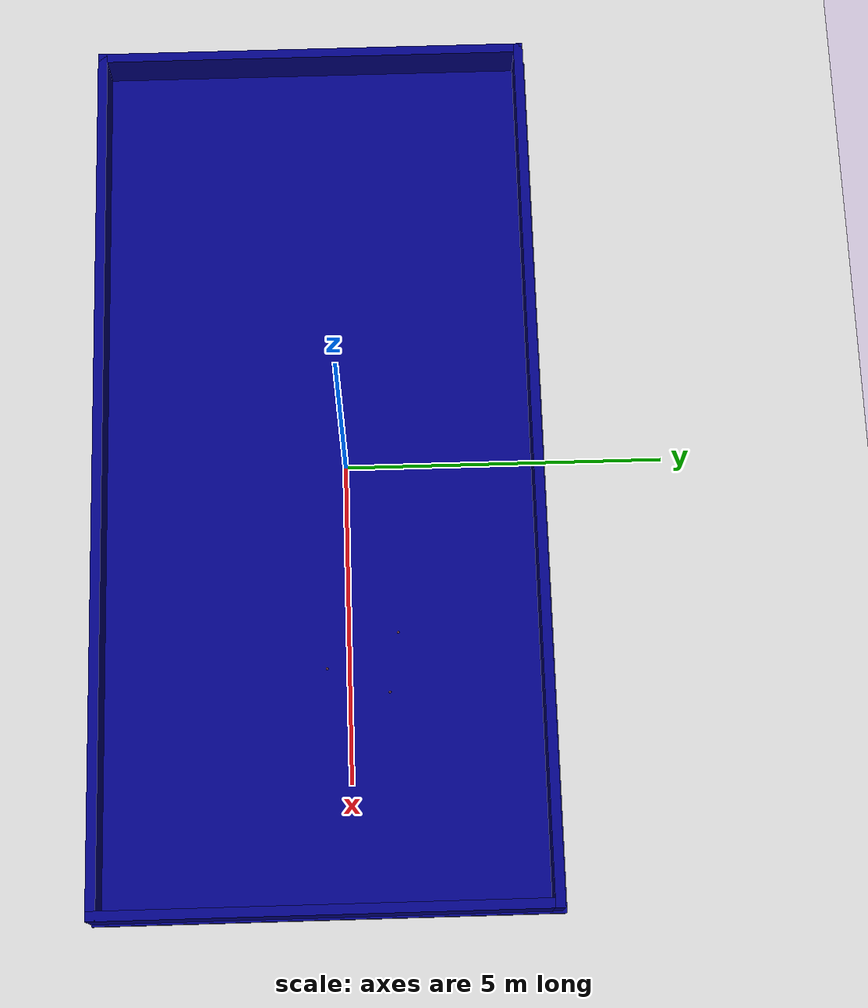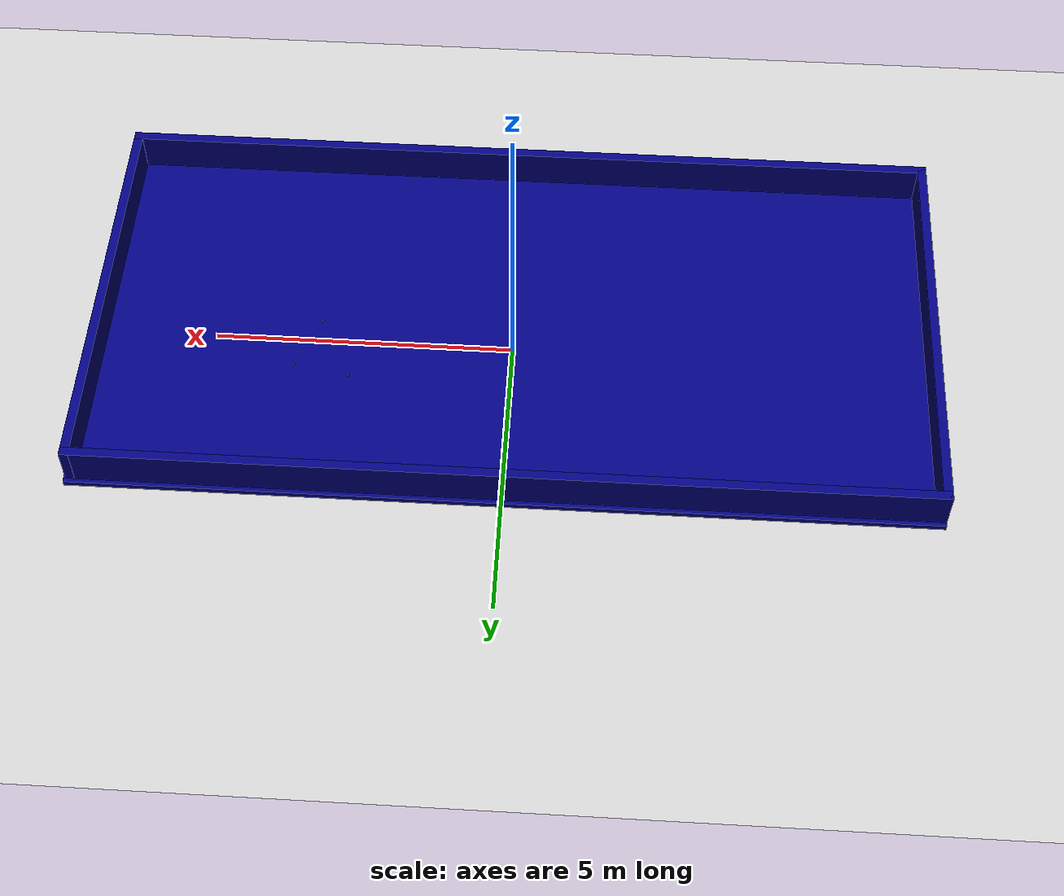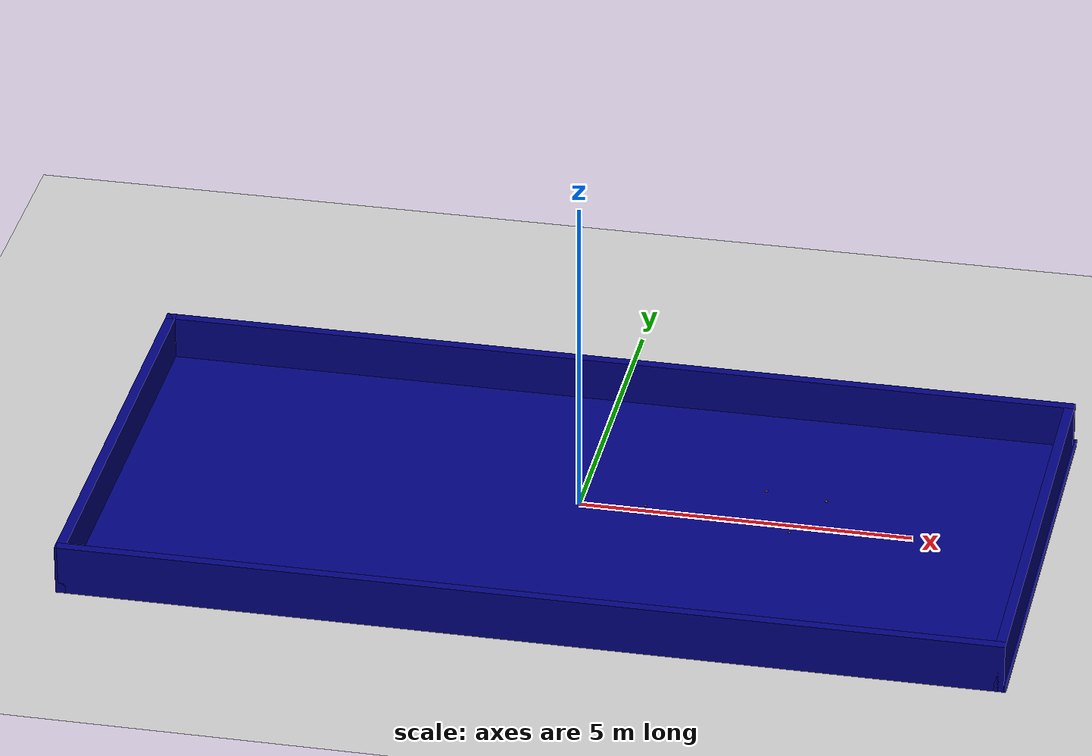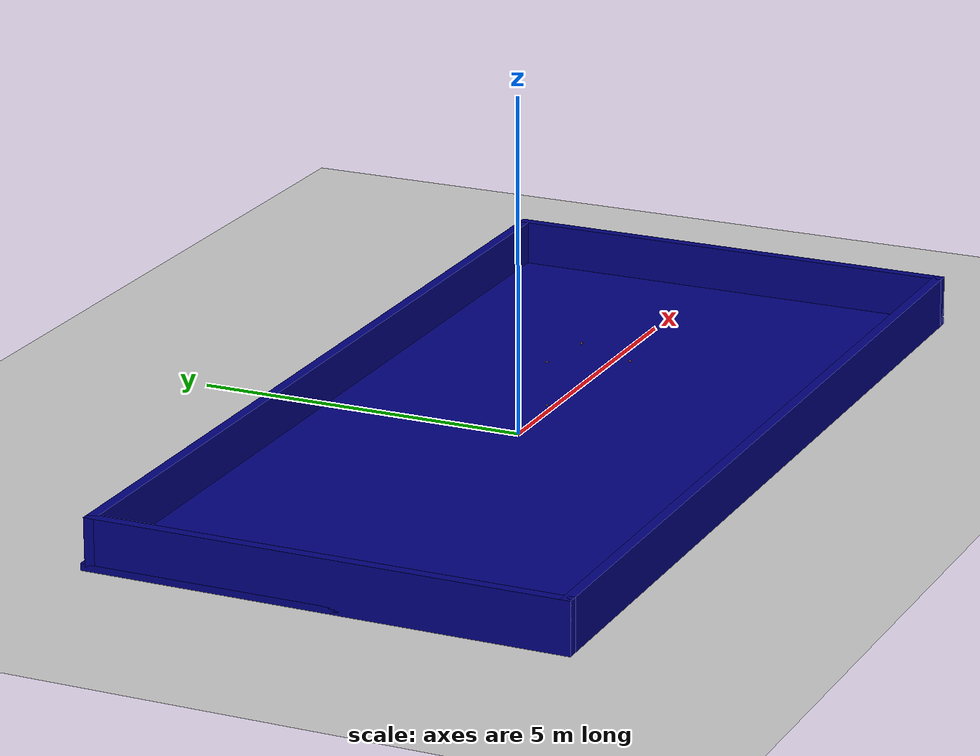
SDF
<sdf version="1.6">
 <world name="default">
  <model name="ground_plane">
   <static>1</static>
   <link name="link">
    <collision name="collision">
     <geometry><plane><normal>0 0 1</normal><size>100 100</size></plane></geometry>
     <surface><friction><ode><mu>100</mu><mu2>50</mu2></ode></friction></surface>
    </collision>
    <visual name="visual">
     <cast_shadows>0</cast_shadows>
     <geometry><plane><normal>0 0 1</normal><size>100 100</size></plane></geometry>
     <material>
      <script><uri>file://media/materials/scripts/gazebo.material</uri><name>Gazebo/Grey</name></script>
     </material>
    </visual>
   </link>
  </model>
  <gravity>0 0 -9.8</gravity>
  <magnetic_field>6e-06 2.3e-05 -4.2e-05</magnetic_field>
  <atmosphere type="adiabatic"/>
  <physics name="default_physics" default="0" type="ode">
   <max_step_size>0.001</max_step_size>
   <real_time_factor>1</real_time_factor>
   <real_time_update_rate>1000</real_time_update_rate>
  </physics>
  <scene><ambient>0.4 0.4 0.4 1</ambient><background>0.7 0.7 0.7 1</background><shadows>1</shadows></scene>
  <spherical_coordinates>
   <surface_model>EARTH_WGS84</surface_model>
   <latitude_deg>0</latitude_deg>
   <longitude_deg>0</longitude_deg>
   <elevation>0</elevation>
   <heading_deg>0</heading_deg>
  </spherical_coordinates>
  <model name="table_tennis_room_1_0">
   <pose>-0.009598 -0.383752 0 0 -0 0</pose>
   <link name="Floor_0">
    <collision name="Floor_0_Collision">
     <geometry><box><size>14.032 7.06688 0.1</size></box></geometry>
     <pose>0 0 0.05 0 -0 0</pose>
    </collision>
    <visual name="Floor_0_Visual">
     <pose>0 0 0.05 0 -0 0</pose>
     <geometry><box><size>14.032 7.06688 0.1</size></box></geometry>
     <material>
      <script><uri>file://media/materials/scripts/gazebo.material</uri><name>Gazebo/Grey</name></script>
      <ambient>0 0 0.498039 1</ambient>
     </material>
    </visual>
    <pose>0 0 0.001 0 -0 0</pose>
   </link>
   <link name="Wall_0">
    <collision name="Wall_0_Collision">
     <geometry><box><size>14 7 0.001</size></box></geometry>
     <pose>0 0 0.0005 0 -0 0</pose>
    </collision>
    <visual name="Wall_0_Visual">
     <pose>0 0 0.0005 0 -0 0</pose>
     <geometry><box><size>14 7 0.001</size></box></geometry>
     <material>
      <script><uri>file://media/materials/scripts/gazebo.material</uri><name>Gazebo/Grey</name></script>
      <ambient>0 0 0.498039 1</ambient>
     </material>
    </visual>
    <pose>0.016 0.0335 0 0 -0 0</pose>
   </link>
   <link name="Wall_2">
    <collision name="Wall_2_Collision">
     <geometry><box><size>14 7 0.001</size></box></geometry>
     <pose>0 0 0.0005 0 -0 0</pose>
    </collision>
    <visual name="Wall_2_Visual">
     <pose>0 0 0.0005 0 -0 0</pose>
     <geometry><box><size>14 7 0.001</size></box></geometry>
     <material>
      <script><uri>file://media/materials/scripts/gazebo.material</uri><name>Gazebo/Grey</name></script>
      <ambient>0 0 0.498039 1</ambient>
     </material>
    </visual>
    <pose>0.016 0.0335 0.001 0 -0 0</pose>
   </link>
   <link name="Wall_5">
    <collision name="Wall_5_Collision">
     <geometry><box><size>14 0.15 0.76</size></box></geometry>
     <pose>0 0 0.38 0 -0 0</pose>
    </collision>
    <visual name="Wall_5_Visual">
     <pose>0 0 0.38 0 -0 0</pose>
     <geometry><box><size>14 0.15 0.76</size></box></geometry>
     <material>
      <script><uri>file://media/materials/scripts/gazebo.material</uri><name>Gazebo/Grey</name></script>
      <ambient>0 0 0.498039 1</ambient>
     </material>
    </visual>
    <pose>-0.016 -3.4585 0.001 0 -0 0</pose>
   </link>
   <link name="Wall_6">
    <collision name="Wall_6_Collision">
     <geometry><box><size>7 0.15 0.76</size></box></geometry>
     <pose>0 0 0.38 0 -0 0</pose>
    </collision>
    <visual name="Wall_6_Visual">
     <pose>0 0 0.38 0 -0 0</pose>
     <geometry><box><size>7 0.15 0.76</size></box></geometry>
     <material>
      <script><uri>file://media/materials/scripts/gazebo.material</uri><name>Gazebo/Grey</name></script>
      <ambient>0 0 0.498039 1</ambient>
     </material>
    </visual>
    <pose>6.909 -0.0335 0.001 0 -0 1.5708</pose>
   </link>
   <link name="Wall_7">
    <collision name="Wall_7_Collision">
     <geometry><box><size>14 0.15 0.76</size></box></geometry>
     <pose>0 0 0.38 0 -0 0</pose>
    </collision>
    <visual name="Wall_7_Visual">
     <pose>0 0 0.38 0 -0 0</pose>
     <geometry><box><size>14 0.15 0.76</size></box></geometry>
     <material>
      <script><uri>file://media/materials/scripts/gazebo.material</uri><name>Gazebo/Grey</name></script>
      <ambient>0 0 0.498039 1</ambient>
     </material>
    </visual>
    <pose>-0.016 3.3915 0.001 0 -0 3.14159</pose>
   </link>
   <link name="Wall_8">
    <collision name="Wall_8_Collision">
     <geometry><box><size>7 0.15 0.76</size></box></geometry>
     <pose>0 0 0.38 0 -0 0</pose>
    </collision>
    <visual name="Wall_8_Visual">
     <pose>0 0 0.38 0 -0 0</pose>
     <geometry><box><size>7 0.15 0.76</size></box></geometry>
     <material>
      <script><uri>file://media/materials/scripts/gazebo.material</uri><name>Gazebo/Grey</name></script>
      <ambient>0 0 0.498039 1</ambient>
     </material>
    </visual>
    <pose>-6.941 -0.0335 0.001 0 0 -1.5708</pose>
   </link>
   <static>1</static>
  </model>
  <light name="user_directional_light_0" type="directional">
   <pose>2.97564 -0.451319 1 0 -0 0</pose>
   <diffuse>0.5 0.5 0.5 1</diffuse>
   <specular>0.1 0.1 0.1 1</specular>
   <direction>0.1 0.1 -0.9</direction>
   <attenuation>
    <range>20</range>
    <constant>0.5</constant>
    <linear>0.01</linear>
    <quadratic>0.001</quadratic>
   </attenuation>
  </light>
  <light name="user_directional_light_1" type="directional">
   <pose>-4.19013 -0.412666 1 0 -0 0</pose>
   <diffuse>0.5 0.5 0.5 1</diffuse>
   <specular>0.1 0.1 0.1 1</specular>
   <direction>0.1 0.1 -0.9</direction>
   <attenuation>
    <range>20</range>
    <constant>0.5</constant>
    <linear>0.01</linear>
    <quadratic>0.001</quadratic>
   </attenuation>
  </light>
  <model name="table_tennis_1_0">
   <link name="link">
    <inertial>
     <mass>0.0027</mass>
     <inertia><ixx>0.1</ixx><ixy>0</ixy><ixz>0</ixz><iyy>0.1</iyy><iyz>0</iyz><izz>0.1</izz></inertia>
    </inertial>
    <visual name="visual">
     <geometry><sphere><radius>0.02</radius></sphere></geometry>
     <material>
      <script>
       <name>Gazebo/OrangeTransparent</name>
       <uri>file://media/materials/scripts/gazebo.material</uri>
      </script>
      <ambient>1 0.44 0 1</ambient>
      <diffuse>1 0.44 0 1</diffuse>
      <specular>0 0 0 1</specular>
      <emissive>0 0 0 1</emissive>
      <shader type="vertex"><normal_map>__default__</normal_map></shader>
     </material>
     <transparency>0.22</transparency>
    </visual>
    <collision name="collision">
     <geometry><sphere><radius>0.02</radius></sphere></geometry>
     <surface>
      <friction>
       <ode><mu>1</mu><mu2>1</mu2><fdir1>0 0 0</fdir1><slip1>0</slip1><slip2>0</slip2></ode>
       <torsional>
        <coefficient>1</coefficient>
        <patch_radius>0</patch_radius>
        <surface_radius>0</surface_radius>
        <use_patch_radius>1</use_patch_radius>
        <ode><slip>0</slip></ode>
       </torsional>
      </friction>
      <bounce><restitution_coefficient>0</restitution_coefficient><threshold>1e+06</threshold></bounce>
      <contact>
       <collide_without_contact>0</collide_without_contact>
       <collide_without_contact_bitmask>1</collide_without_contact_bitmask>
       <collide_bitmask>1</collide_bitmask>
       <ode>
        <soft_cfm>0</soft_cfm>
        <soft_erp>0.2</soft_erp>
        <kp>1e+13</kp>
        <kd>1</kd>
        <max_vel>0.01</max_vel>
        <min_depth>0</min_depth>
       </ode>
       <bullet>
        <split_impulse>1</split_impulse>
        <split_impulse_penetration_threshold>-0.01</split_impulse_penetration_threshold>
        <soft_cfm>0</soft_cfm>
        <soft_erp>0.2</soft_erp>
        <kp>1e+13</kp>
        <kd>1</kd>
       </bullet>
      </contact>
     </surface>
    </collision>
   </link>
   <static>0</static>
   <pose>0 0 0.121 0 -0 0</pose>
  </model>
  <model name="table_tennis_1_3">
   <link name="link">
    <inertial>
     <mass>0.0027</mass>
     <inertia><ixx>0.1</ixx><ixy>0</ixy><ixz>0</ixz><iyy>0.1</iyy><iyz>0</iyz><izz>0.1</izz></inertia>
    </inertial>
    <visual name="visual">
     <geometry><sphere><radius>0.02</radius></sphere></geometry>
     <material>
      <script>
       <name>Gazebo/OrangeTransparent</name>
       <uri>file://media/materials/scripts/gazebo.material</uri>
      </script>
      <ambient>1 0.44 0 1</ambient>
      <diffuse>1 0.44 0 1</diffuse>
      <specular>0 0 0 1</specular>
      <emissive>0 0 0 1</emissive>
      <shader type="vertex"><normal_map>__default__</normal_map></shader>
     </material>
     <transparency>0.22</transparency>
    </visual>
    <collision name="collision">
     <geometry><sphere><radius>0.02</radius></sphere></geometry>
     <surface>
      <friction>
       <ode><mu>1</mu><mu2>1</mu2><fdir1>0 0 0</fdir1><slip1>0</slip1><slip2>0</slip2></ode>
       <torsional>
        <coefficient>1</coefficient>
        <patch_radius>0</patch_radius>
        <surface_radius>0</surface_radius>
        <use_patch_radius>1</use_patch_radius>
        <ode><slip>0</slip></ode>
       </torsional>
      </friction>
      <bounce><restitution_coefficient>0</restitution_coefficient><threshold>1e+06</threshold></bounce>
      <contact>
       <collide_without_contact>0</collide_without_contact>
       <collide_without_contact_bitmask>1</collide_without_contact_bitmask>
       <collide_bitmask>1</collide_bitmask>
       <ode>
        <soft_cfm>0</soft_cfm>
        <soft_erp>0.2</soft_erp>
        <kp>1e+13</kp>
        <kd>1</kd>
        <max_vel>0.01</max_vel>
        <min_depth>0</min_depth>
       </ode>
       <bullet>
        <split_impulse>1</split_impulse>
        <split_impulse_penetration_threshold>-0.01</split_impulse_penetration_threshold>
        <soft_cfm>0</soft_cfm>
        <soft_erp>0.2</soft_erp>
        <kp>1e+13</kp>
        <kd>1</kd>
       </bullet>
      </contact>
     </surface>
    </collision>
   </link>
   <static>0</static>
   <pose>1 0 0.1 0 -0 0</pose>
  </model>
  <model name="table_tennis_1">
   <link name="link">
    <inertial>
     <mass>0.0027</mass>
     <inertia><ixx>0.1</ixx><ixy>0</ixy><ixz>0</ixz><iyy>0.1</iyy><iyz>0</iyz><izz>0.1</izz></inertia>
    </inertial>
    <visual name="visual">
     <geometry><sphere><radius>0.02</radius></sphere></geometry>
     <material>
      <script>
       <name>Gazebo/OrangeTransparent</name>
       <uri>file://media/materials/scripts/gazebo.material</uri>
      </script>
      <ambient>1 0.44 0 1</ambient>
      <diffuse>1 0.44 0 1</diffuse>
      <specular>0 0 0 1</specular>
      <emissive>0 0 0 1</emissive>
      <shader type="vertex"><normal_map>__default__</normal_map></shader>
     </material>
     <transparency>0.22</transparency>
    </visual>
    <collision name="collision">
     <geometry><sphere><radius>0.02</radius></sphere></geometry>
     <surface>
      <friction>
       <ode><mu>1</mu><mu2>1</mu2><fdir1>0 0 0</fdir1><slip1>0</slip1><slip2>0</slip2></ode>
       <torsional>
        <coefficient>1</coefficient>
        <patch_radius>0</patch_radius>
        <surface_radius>0</surface_radius>
        <use_patch_radius>1</use_patch_radius>
        <ode><slip>0</slip></ode>
       </torsional>
      </friction>
      <bounce><restitution_coefficient>0</restitution_coefficient><threshold>1e+06</threshold></bounce>
      <contact>
       <collide_without_contact>0</collide_without_contact>
       <collide_without_contact_bitmask>1</collide_without_contact_bitmask>
       <collide_bitmask>1</collide_bitmask>
       <ode>
        <soft_cfm>0</soft_cfm>
        <soft_erp>0.2</soft_erp>
        <kp>1e+13</kp>
        <kd>1</kd>
        <max_vel>0.01</max_vel>
        <min_depth>0</min_depth>
       </ode>
       <bullet>
        <split_impulse>1</split_impulse>
        <split_impulse_penetration_threshold>-0.01</split_impulse_penetration_threshold>
        <soft_cfm>0</soft_cfm>
        <soft_erp>0.2</soft_erp>
        <kp>1e+13</kp>
        <kd>1</kd>
       </bullet>
      </contact>
     </surface>
    </collision>
   </link>
   <static>0</static>
   <pose>3.62177 0.608005 0.121 0 -0 0</pose>
  </model>
  <model name="table_tennis_1_1">
   <link name="link">
    <inertial>
     <mass>0.0027</mass>
     <inertia><ixx>0.1</ixx><ixy>0</ixy><ixz>0</ixz><iyy>0.1</iyy><iyz>0</iyz><izz>0.1</izz></inertia>
    </inertial>
    <visual name="visual">
     <geometry><sphere><radius>0.02</radius></sphere></geometry>
     <material>
      <script>
       <name>Gazebo/OrangeTransparent</name>
       <uri>file://media/materials/scripts/gazebo.material</uri>
      </script>
      <ambient>1 0.44 0 1</ambient>
      <diffuse>1 0.44 0 1</diffuse>
      <specular>0 0 0 1</specular>
      <emissive>0 0 0 1</emissive>
      <shader type="vertex"><normal_map>__default__</normal_map></shader>
     </material>
     <transparency>0.22</transparency>
    </visual>
    <collision name="collision">
     <geometry><sphere><radius>0.02</radius></sphere></geometry>
     <surface>
      <friction>
       <ode><mu>1</mu><mu2>1</mu2><fdir1>0 0 0</fdir1><slip1>0</slip1><slip2>0</slip2></ode>
       <torsional>
        <coefficient>1</coefficient>
        <patch_radius>0</patch_radius>
        <surface_radius>0</surface_radius>
        <use_patch_radius>1</use_patch_radius>
        <ode><slip>0</slip></ode>
       </torsional>
      </friction>
      <bounce><restitution_coefficient>0</restitution_coefficient><threshold>1e+06</threshold></bounce>
      <contact>
       <collide_without_contact>0</collide_without_contact>
       <collide_without_contact_bitmask>1</collide_without_contact_bitmask>
       <collide_bitmask>1</collide_bitmask>
       <ode>
        <soft_cfm>0</soft_cfm>
        <soft_erp>0.2</soft_erp>
        <kp>1e+13</kp>
        <kd>1</kd>
        <max_vel>0.01</max_vel>
        <min_depth>0</min_depth>
       </ode>
       <bullet>
        <split_impulse>1</split_impulse>
        <split_impulse_penetration_threshold>-0.01</split_impulse_penetration_threshold>
        <soft_cfm>0</soft_cfm>
        <soft_erp>0.2</soft_erp>
        <kp>1e+13</kp>
        <kd>1</kd>
       </bullet>
      </contact>
     </surface>
    </collision>
   </link>
   <static>0</static>
   <pose>2.69141 0.758746 0.1 0 -0 0</pose>
  </model>
  <model name="table_tennis_1_2">
   <link name="link">
    <inertial>
     <mass>0.0027</mass>
     <inertia><ixx>0.1</ixx><ixy>0</ixy><ixz>0</ixz><iyy>0.1</iyy><iyz>0</iyz><izz>0.1</izz></inertia>
    </inertial>
    <visual name="visual">
     <geometry><sphere><radius>0.02</radius></sphere></geometry>
     <material>
      <script>
       <name>Gazebo/OrangeTransparent</name>
       <uri>file://media/materials/scripts/gazebo.material</uri>
      </script>
      <ambient>1 0.44 0 1</ambient>
      <diffuse>1 0.44 0 1</diffuse>
      <specular>0 0 0 1</specular>
      <emissive>0 0 0 1</emissive>
      <shader type="vertex"><normal_map>__default__</normal_map></shader>
     </material>
     <transparency>0.22</transparency>
    </visual>
    <collision name="collision">
     <geometry><sphere><radius>0.02</radius></sphere></geometry>
     <surface>
      <friction>
       <ode><mu>1</mu><mu2>1</mu2><fdir1>0 0 0</fdir1><slip1>0</slip1><slip2>0</slip2></ode>
       <torsional>
        <coefficient>1</coefficient>
        <patch_radius>0</patch_radius>
        <surface_radius>0</surface_radius>
        <use_patch_radius>1</use_patch_radius>
        <ode><slip>0</slip></ode>
       </torsional>
      </friction>
      <bounce><restitution_coefficient>0</restitution_coefficient><threshold>1e+06</threshold></bounce>
      <contact>
       <collide_without_contact>0</collide_without_contact>
       <collide_without_contact_bitmask>1</collide_without_contact_bitmask>
       <collide_bitmask>1</collide_bitmask>
       <ode>
        <soft_cfm>0</soft_cfm>
        <soft_erp>0.2</soft_erp>
        <kp>1e+13</kp>
        <kd>1</kd>
        <max_vel>0.01</max_vel>
        <min_depth>0</min_depth>
       </ode>
       <bullet>
        <split_impulse>1</split_impulse>
        <split_impulse_penetration_threshold>-0.01</split_impulse_penetration_threshold>
        <soft_cfm>0</soft_cfm>
        <soft_erp>0.2</soft_erp>
        <kp>1e+13</kp>
        <kd>1</kd>
       </bullet>
      </contact>
     </surface>
    </collision>
   </link>
   <static>0</static>
   <pose>3.23062 -0.348564 0.1 0 -0 0</pose>
  </model>
 </world>
</sdf>
